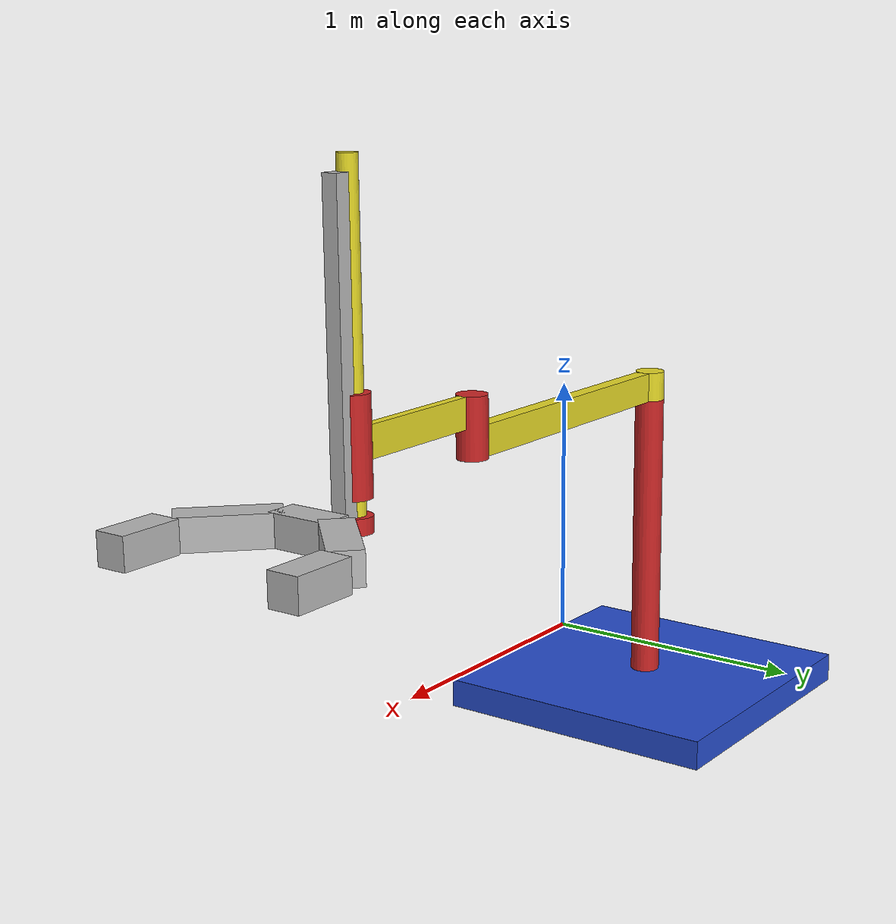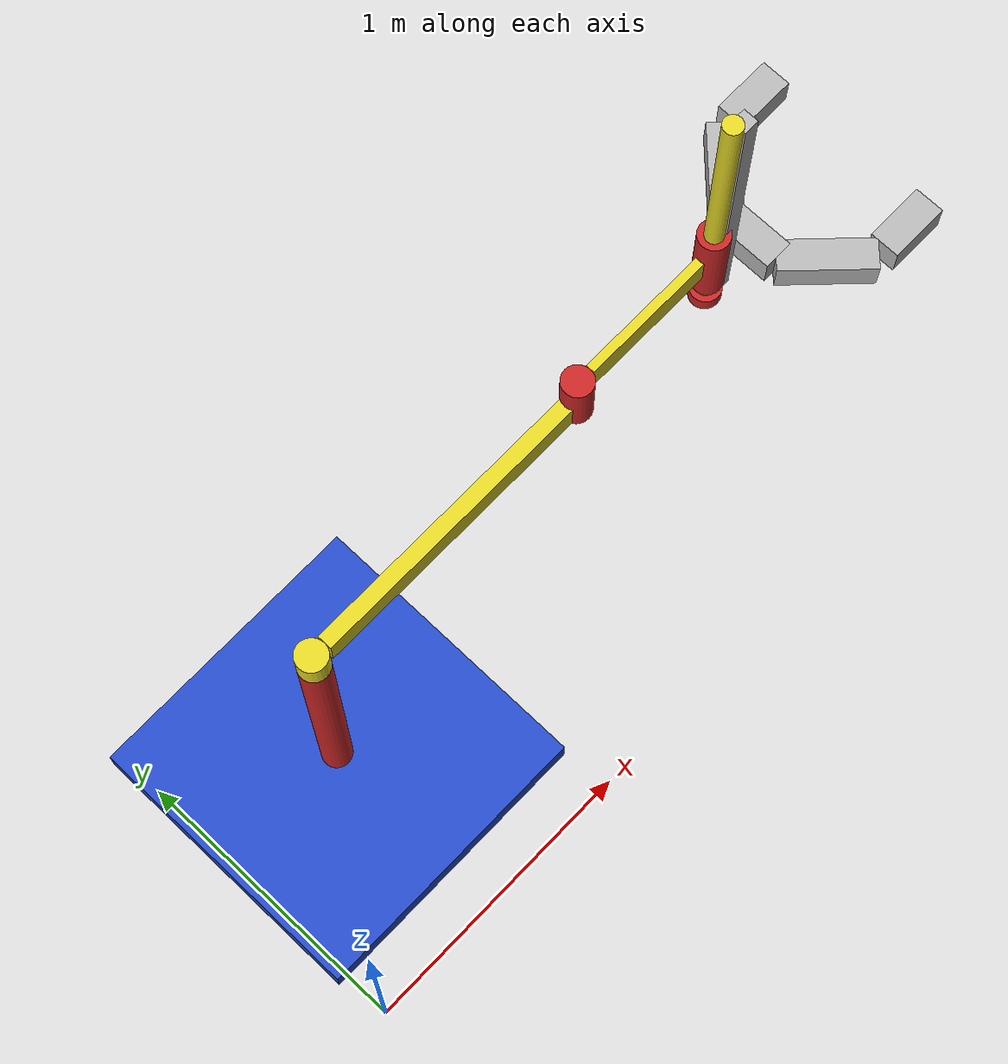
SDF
<?xml version='1.0'?>
<sdf version='1.6'>
  <model name='ArmGripper'>
    <model name='simple_arm_gripper'>
      <link name='simple_arm::arm_base'>
        <inertial>
          <pose frame=''>0 0 0.00099 0 -0 0</pose>
          <inertia>
            <ixx>1.11</ixx>
            <ixy>0</ixy>
            <ixz>0</ixz>
            <iyy>100.11</iyy>
            <iyz>0</iyz>
            <izz>1.01</izz>
          </inertia>
          <mass>101</mass>
        </inertial>
        <collision name='arm_base_geom'>
          <pose frame=''>0 0 0.05 0 -0 0</pose>
          <geometry>
            <box>
              <size>1 1 0.1</size>
            </box>
          </geometry>
        </collision>
        <visual name='arm_base_geom_visual'>
          <pose frame=''>0 0 0.05 0 -0 0</pose>
          <geometry>
            <box>
              <size>1 1 0.1</size>
            </box>
          </geometry>
          <material>
            <script>
              <uri>file://media/materials/scripts/gazebo.material</uri>
              <name>Gazebo/Blue</name>
            </script>
          </material>
        </visual>
        <collision name='arm_base_geom_arm_trunk'>
          <pose frame=''>0 0 0.6 0 -0 0</pose>
          <geometry>
            <cylinder>
              <radius>0.05</radius>
              <length>1</length>
            </cylinder>
          </geometry>
        </collision>
        <visual name='arm_base_geom_arm_trunk_visual'>
          <pose frame=''>0 0 0.6 0 -0 0</pose>
          <geometry>
            <cylinder>
              <radius>0.05</radius>
              <length>1</length>
            </cylinder>
          </geometry>
          <material>
            <script>
              <uri>file://media/materials/scripts/gazebo.material</uri>
              <name>Gazebo/Red</name>
            </script>
          </material>
        </visual>
        <pose frame=''>0 0 0 0 -0 0</pose>
      </link>
      <link name='simple_arm::arm_shoulder_pan'>
        <pose frame=''>0 0 1.1 0 -0 0</pose>
        <inertial>
          <pose frame=''>0.045455 0 0 0 -0 0</pose>
          <inertia>
            <ixx>0.011</ixx>
            <ixy>0</ixy>
            <ixz>0</ixz>
            <iyy>0.0225</iyy>
            <iyz>0</iyz>
            <izz>0.0135</izz>
          </inertia>
          <mass>1.1</mass>
        </inertial>
        <collision name='arm_shoulder_pan_geom'>
          <pose frame=''>0 0 0.05 0 -0 0</pose>
          <geometry>
            <cylinder>
              <radius>0.05</radius>
              <length>0.1</length>
            </cylinder>
          </geometry>
        </collision>
        <visual name='arm_shoulder_pan_geom_visual'>
          <pose frame=''>0 0 0.05 0 -0 0</pose>
          <geometry>
            <cylinder>
              <radius>0.05</radius>
              <length>0.1</length>
            </cylinder>
          </geometry>
          <material>
            <script>
              <uri>file://media/materials/scripts/gazebo.material</uri>
              <name>Gazebo/Yellow</name>
            </script>
          </material>
        </visual>
        <collision name='arm_shoulder_pan_geom_arm_shoulder'>
          <pose frame=''>0.55 0 0.05 0 -0 0</pose>
          <geometry>
            <box>
              <size>1 0.05 0.1</size>
            </box>
          </geometry>
        </collision>
        <visual name='arm_shoulder_pan_geom_arm_shoulder_visual'>
          <pose frame=''>0.55 0 0.05 0 -0 0</pose>
          <geometry>
            <box>
              <size>1 0.05 0.1</size>
            </box>
          </geometry>
          <material>
            <script>
              <uri>file://media/materials/scripts/gazebo.material</uri>
              <name>Gazebo/Yellow</name>
            </script>
          </material>
        </visual>
      </link>
      <link name='simple_arm::arm_elbow_pan'>
        <pose frame=''>1.05 0 1.1 0 -0 0</pose>
        <inertial>
          <pose frame=''>0.0875 0 0.083333 0 -0 0</pose>
          <inertia>
            <ixx>0.031</ixx>
            <ixy>0</ixy>
            <ixz>0.005</ixz>
            <iyy>0.07275</iyy>
            <iyz>0</iyz>
            <izz>0.04475</izz>
          </inertia>
          <mass>1.2</mass>
        </inertial>
        <collision name='arm_elbow_pan_geom'>
          <pose frame=''>0 0 0.1 0 -0 0</pose>
          <geometry>
            <cylinder>
              <radius>0.05</radius>
              <length>0.2</length>
            </cylinder>
          </geometry>
        </collision>
        <visual name='arm_elbow_pan_geom_visual'>
          <pose frame=''>0 0 0.1 0 -0 0</pose>
          <geometry>
            <cylinder>
              <radius>0.05</radius>
              <length>0.2</length>
            </cylinder>
          </geometry>
          <material>
            <script>
              <uri>file://media/materials/scripts/gazebo.material</uri>
              <name>Gazebo/Red</name>
            </script>
          </material>
        </visual>
        <collision name='arm_elbow_pan_geom_arm_elbow'>
          <pose frame=''>0.3 0 0.15 0 -0 0</pose>
          <geometry>
            <box>
              <size>0.5 0.03 0.1</size>
            </box>
          </geometry>
        </collision>
        <visual name='arm_elbow_pan_geom_arm_elbow_visual'>
          <pose frame=''>0.3 0 0.15 0 -0 0</pose>
          <geometry>
            <box>
              <size>0.5 0.03 0.1</size>
            </box>
          </geometry>
          <material>
            <script>
              <uri>file://media/materials/scripts/gazebo.material</uri>
              <name>Gazebo/Yellow</name>
            </script>
          </material>
        </visual>
        <collision name='arm_elbow_pan_geom_arm_wrist'>
          <pose frame=''>0.55 0 0.15 0 -0 0</pose>
          <geometry>
            <cylinder>
              <radius>0.05</radius>
              <length>0.3</length>
            </cylinder>
          </geometry>
        </collision>
        <visual name='arm_elbow_pan_geom_arm_wrist_visual'>
          <pose frame=''>0.55 0 0.15 0 -0 0</pose>
          <geometry>
            <cylinder>
              <radius>0.05</radius>
              <length>0.3</length>
            </cylinder>
          </geometry>
          <material>
            <script>
              <uri>file://media/materials/scripts/gazebo.material</uri>
              <name>Gazebo/Red</name>
            </script>
          </material>
        </visual>
      </link>
      <link name='simple_arm::arm_wrist_lift'>
        <pose frame=''>1.6 0 1.05 0 -0 0</pose>
        <inertial>
          <pose frame=''>0 0 0 0 -0 0</pose>
          <inertia>
            <ixx>0.01</ixx>
            <ixy>0</ixy>
            <ixz>0</ixz>
            <iyy>0.01</iyy>
            <iyz>0</iyz>
            <izz>0.001</izz>
          </inertia>
          <mass>0.1</mass>
        </inertial>
        <collision name='arm_wrist_lift_geom'>
          <pose frame=''>0 0 0.5 0 -0 0</pose>
          <geometry>
            <cylinder>
              <radius>0.03</radius>
              <length>1</length>
            </cylinder>
          </geometry>
        </collision>
        <visual name='arm_wrist_lift_geom_visual'>
          <pose frame=''>0 0 0.5 0 -0 0</pose>
          <geometry>
            <cylinder>
              <radius>0.03</radius>
              <length>1</length>
            </cylinder>
          </geometry>
          <material>
            <script>
              <uri>file://media/materials/scripts/gazebo.material</uri>
              <name>Gazebo/Yellow</name>
            </script>
          </material>
        </visual>
      </link>
      <link name='simple_arm::arm_wrist_roll'>
        <pose frame=''>1.6 0 1 0 -0 0</pose>
        <inertial>
          <pose frame=''>0 0 0 0 -0 0</pose>
          <inertia>
            <ixx>0.01</ixx>
            <ixy>0</ixy>
            <ixz>0</ixz>
            <iyy>0.01</iyy>
            <iyz>0</iyz>
            <izz>0.001</izz>
          </inertia>
          <mass>0.1</mass>
        </inertial>
        <collision name='arm_wrist_roll_geom'>
          <pose frame=''>0 0 0.025 0 -0 0</pose>
          <geometry>
            <cylinder>
              <radius>0.05</radius>
              <length>0.05</length>
            </cylinder>
          </geometry>
        </collision>
        <visual name='arm_wrist_roll_geom_visual'>
          <pose frame=''>0 0 0.025 0 -0 0</pose>
          <geometry>
            <cylinder>
              <radius>0.05</radius>
              <length>0.05</length>
            </cylinder>
          </geometry>
          <material>
            <script>
              <uri>file://media/materials/scripts/gazebo.material</uri>
              <name>Gazebo/Red</name>
            </script>
          </material>
        </visual>
      </link>
      <joint name='simple_arm::arm_shoulder_pan_joint' type='revolute'>
        <parent>simple_arm::arm_base</parent>
        <child>simple_arm::arm_shoulder_pan</child>
        <axis>
          <dynamics>
            <damping>1</damping>
            <friction>0</friction>
            <spring_reference>0</spring_reference>
            <spring_stiffness>0</spring_stiffness>
          </dynamics>
          <xyz>0 0 1</xyz>
          <use_parent_model_frame>1</use_parent_model_frame>
          <limit>
            <lower>-1e+16</lower>
            <upper>1e+16</upper>
          </limit>
        </axis>
      </joint>
      <joint name='simple_arm::arm_elbow_pan_joint' type='revolute'>
        <parent>simple_arm::arm_shoulder_pan</parent>
        <child>simple_arm::arm_elbow_pan</child>
        <axis>
          <dynamics>
            <damping>1</damping>
            <friction>0</friction>
            <spring_reference>0</spring_reference>
            <spring_stiffness>0</spring_stiffness>
          </dynamics>
          <xyz>0 0 1</xyz>
          <use_parent_model_frame>1</use_parent_model_frame>
          <limit>
            <lower>-1e+16</lower>
            <upper>1e+16</upper>
          </limit>
        </axis>
      </joint>
      <joint name='simple_arm::arm_wrist_lift_joint' type='prismatic'>
        <parent>simple_arm::arm_elbow_pan</parent>
        <child>simple_arm::arm_wrist_lift</child>
        <axis>
          <dynamics>
            <damping>1</damping>
            <friction>0</friction>
            <spring_reference>0</spring_reference>
            <spring_stiffness>0</spring_stiffness>
          </dynamics>
          <limit>
            <lower>-0.8</lower>
            <upper>0.1</upper>
          </limit>
          <xyz>0 0 1</xyz>
          <use_parent_model_frame>1</use_parent_model_frame>
        </axis>
      </joint>
      <joint name='simple_arm::arm_wrist_roll_joint' type='revolute'>
        <parent>simple_arm::arm_wrist_lift</parent>
        <child>simple_arm::arm_wrist_roll</child>
        <axis>
          <dynamics>
            <damping>1</damping>
            <friction>0</friction>
            <spring_reference>0</spring_reference>
            <spring_stiffness>0</spring_stiffness>
          </dynamics>
          <limit>
            <lower>-2.99999</lower>
            <upper>2.99999</upper>
          </limit>
          <xyz>0 0 1</xyz>
          <use_parent_model_frame>1</use_parent_model_frame>
        </axis>
      </joint>
      <link name='simple_gripper::riser'>
        <pose frame=''>1.65 0 1.5 0 -0 0</pose>
        <inertial>
          <mass>10</mass>
        </inertial>
        <collision name='collision'>
          <geometry>
            <box>
              <size>0.05 0.05 1</size>
            </box>
          </geometry>
          <surface>
            <contact>
              <ode>
                <max_vel>0</max_vel>
              </ode>
            </contact>
          </surface>
        </collision>
        <visual name='visual'>
          <geometry>
            <box>
              <size>0.05 0.05 1</size>
            </box>
          </geometry>
        </visual>
      </link>
      <link name='simple_gripper::palm'>
        <pose frame=''>1.8 0 1.05 0 -0 0</pose>
        <inertial>
          <mass>0.5</mass>
        </inertial>
        <collision name='collision'>
          <geometry>
            <box>
              <size>0.1 0.2 0.1</size>
            </box>
          </geometry>
          <surface>
            <contact>
              <ode>
                <max_vel>0</max_vel>
              </ode>
            </contact>
          </surface>
        </collision>
        <visual name='visual'>
          <geometry>
            <box>
              <size>0.1 0.2 0.1</size>
            </box>
          </geometry>
        </visual>
      </link>
      <link name='simple_gripper::left_finger'>
        <pose frame=''>1.9 0.2 1.05 0 0 -0.78539</pose>
        <inertial>
          <mass>0.1</mass>
        </inertial>
        <collision name='collision'>
          <geometry>
            <box>
              <size>0.1 0.3 0.1</size>
            </box>
          </geometry>
          <surface>
            <friction>
              <ode>
                <mu>0.1</mu>
                <mu2>0</mu2>
              </ode>
            </friction>
            <contact>
              <ode>
                <max_vel>0</max_vel>
              </ode>
            </contact>
          </surface>
        </collision>
        <visual name='visual'>
          <geometry>
            <box>
              <size>0.1 0.3 0.1</size>
            </box>
          </geometry>
        </visual>
      </link>
      <link name='simple_gripper::left_finger_tip'>
        <pose frame=''>2.136 0.3 1.05 0 -0 1.5707</pose>
        <inertial>
          <mass>0.5</mass>
        </inertial>
        <collision name='collision'>
          <geometry>
            <box>
              <size>0.1 0.2 0.1</size>
            </box>
          </geometry>
          <surface>
            <friction>
              <ode>
                <mu>0.1</mu>
                <mu2>0</mu2>
              </ode>
            </friction>
            <contact>
              <ode>
                <max_vel>0</max_vel>
              </ode>
            </contact>
          </surface>
        </collision>
        <visual name='visual'>
          <geometry>
            <box>
              <size>0.1 0.2 0.1</size>
            </box>
          </geometry>
        </visual>
      </link>
      <link name='simple_gripper::right_finger'>
        <pose frame=''>1.9 -0.2 1.05 0 -0 0.78539</pose>
        <inertial>
          <mass>0.1</mass>
        </inertial>
        <collision name='collision'>
          <geometry>
            <box>
              <size>0.1 0.3 0.1</size>
            </box>
          </geometry>
          <surface>
            <friction>
              <ode>
                <mu>0.1</mu>
                <mu2>0</mu2>
              </ode>
            </friction>
            <contact>
              <ode>
                <max_vel>0</max_vel>
              </ode>
            </contact>
          </surface>
        </collision>
        <visual name='visual'>
          <geometry>
            <box>
              <size>0.1 0.3 0.1</size>
            </box>
          </geometry>
        </visual>
      </link>
      <link name='simple_gripper::right_finger_tip'>
        <pose frame=''>2.136 -0.3 1.05 0 -0 1.5707</pose>
        <inertial>
          <mass>0.1</mass>
        </inertial>
        <collision name='collision'>
          <geometry>
            <box>
              <size>0.1 0.2 0.1</size>
            </box>
          </geometry>
          <surface>
            <friction>
              <ode>
                <mu>0.1</mu>
                <mu2>0</mu2>
              </ode>
            </friction>
            <contact>
              <ode>
                <max_vel>0</max_vel>
              </ode>
            </contact>
          </surface>
        </collision>
        <visual name='visual'>
          <geometry>
            <box>
              <size>0.1 0.2 0.1</size>
            </box>
          </geometry>
        </visual>
      </link>
      <joint name='simple_gripper::palm_left_finger' type='revolute'>
        <pose frame=''>0 -0.15 0 0 -0 0</pose>
        <child>simple_gripper::left_finger</child>
        <parent>simple_gripper::palm</parent>
        <axis>
          <limit>
            <lower>-0.8</lower>
            <upper>0.8</upper>
          </limit>
          <xyz>0 0 1</xyz>
          <use_parent_model_frame>1</use_parent_model_frame>
        </axis>
      </joint>
      <joint name='simple_gripper::left_finger_tip' type='revolute'>
        <pose frame=''>0 0.1 0 0 -0 0</pose>
        <child>simple_gripper::left_finger_tip</child>
        <parent>simple_gripper::left_finger</parent>
        <axis>
          <limit>
            <lower>-0.8</lower>
            <upper>0.8</upper>
          </limit>
          <xyz>0 0 1</xyz>
          <use_parent_model_frame>1</use_parent_model_frame>
        </axis>
      </joint>
      <joint name='simple_gripper::palm_right_finger' type='revolute'>
        <pose frame=''>0 0.15 0 0 -0 0</pose>
        <child>simple_gripper::right_finger</child>
        <parent>simple_gripper::palm</parent>
        <axis>
          <limit>
            <lower>-0.8</lower>
            <upper>0.8</upper>
          </limit>
          <xyz>0 0 1</xyz>
          <use_parent_model_frame>1</use_parent_model_frame>
        </axis>
      </joint>
      <joint name='simple_gripper::right_finger_tip' type='revolute'>
        <pose frame=''>0 0.1 0 0 -0 0</pose>
        <child>simple_gripper::right_finger_tip</child>
        <parent>simple_gripper::right_finger</parent>
        <axis>
          <limit>
            <lower>-0.8</lower>
            <upper>0.8</upper>
          </limit>
          <xyz>0 0 1</xyz>
          <use_parent_model_frame>1</use_parent_model_frame>
        </axis>
      </joint>
      <joint name='simple_gripper::palm_riser' type='prismatic'>
        <child>simple_gripper::palm</child>
        <parent>simple_gripper::riser</parent>
        <axis>
          <limit>
            <lower>0</lower>
            <upper>0.9</upper>
          </limit>
          <xyz>0 0 1</xyz>
          <use_parent_model_frame>1</use_parent_model_frame>
        </axis>
      </joint>
      <gripper name='simple_gripper'>
        <grasp_check>
          <detach_steps>40</detach_steps>
          <attach_steps>20</attach_steps>
          <min_contact_count>2</min_contact_count>
        </grasp_check>
        <gripper_link>simple_gripper::right_finger</gripper_link>
        <gripper_link>simple_gripper::right_finger_tip</gripper_link>
        <gripper_link>simple_gripper::left_finger</gripper_link>
        <gripper_link>simple_gripper::left_finger_tip</gripper_link>
        <palm_link>simple_gripper::palm</palm_link>
      </gripper>
      <plugin name='simple_arm_plugin' filename='libJointTrajectoryPlugin.so'/>
      <joint name='arm_gripper_joint' type='revolute'>
        <parent>simple_arm::arm_wrist_roll</parent>
        <child>simple_gripper::riser</child>
        <axis>
          <limit>
            <lower>0</lower>
            <upper>0</upper>
          </limit>
          <xyz>0 0 1</xyz>
          <use_parent_model_frame>1</use_parent_model_frame>
        </axis>
      </joint>
      <pose frame=''>0.463373 0.662981 0 0 -0 0</pose>
    </model>
    <static>0</static>
    <allow_auto_disable>1</allow_auto_disable>
  </model>
</sdf>
